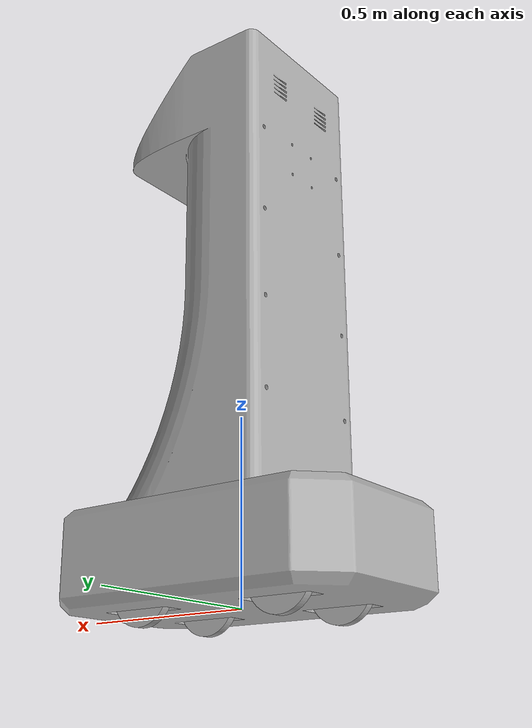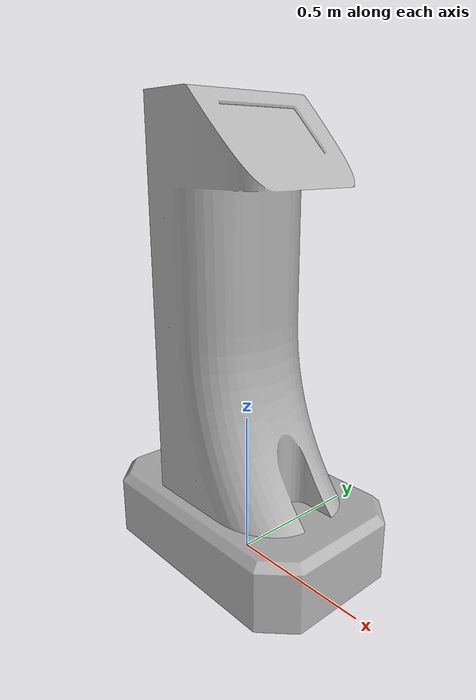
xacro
<?xml version="1.0" ?>
<robot name="urdF" xmlns:xacro="http://www.ros.org/wiki/xacro">

<xacro:include filename="$(find urdF_description)/urdf/materials.xacro" />
<xacro:include filename="$(find urdF_description)/urdf/urdF.trans" />
<xacro:include filename="$(find urdF_description)/urdf/urdF.gazebo" />
<link name="base_link">
  <inertial>
    <origin xyz="7.980285628189428e-17 -3.990142814094714e-17 0.12803630068802982" rpy="0 0 0"/>
    <mass value="916.117862361551"/>
    <inertia ixx="29.080883" iyy="62.895145" izz="82.576037" ixy="-0.0" iyz="0.0" ixz="0.0"/>
  </inertial>
  <visual>
    <origin xyz="0 0 0" rpy="0 0 0"/>
    <geometry>
      <mesh filename="package://urdF_description/meshes/base_link.stl" scale="0.001 0.001 0.001"/>
    </geometry>
    <material name="silver"/>
  </visual>
  <collision>
    <origin xyz="0 0 0" rpy="0 0 0"/>
    <geometry>
      <mesh filename="package://urdF_description/meshes/base_link.stl" scale="0.001 0.001 0.001"/>
    </geometry>
  </collision>
</link>

<link name="L_WHEEL_F_1">
  <inertial>
    <origin xyz="1.27675647831893e-14 0.0 4.85722573273506e-17" rpy="0 0 0"/>
    <mass value="5.05336007222817"/>
    <inertia ixx="0.010871" iyy="0.021215" izz="0.010871" ixy="0.0" iyz="0.0" ixz="0.0"/>
  </inertial>
  <visual>
    <origin xyz="-0.2125 -0.1325 -0.05" rpy="0 0 0"/>
    <geometry>
      <mesh filename="package://urdF_description/meshes/L_WHEEL_F_1.stl" scale="0.001 0.001 0.001"/>
    </geometry>
    <material name="silver"/>
  </visual>
  <collision>
    <origin xyz="-0.2125 -0.1325 -0.05" rpy="0 0 0"/>
    <geometry>
      <mesh filename="package://urdF_description/meshes/L_WHEEL_F_1.stl" scale="0.001 0.001 0.001"/>
    </geometry>
  </collision>
</link>

<link name="L_WHEEL_B_1">
  <inertial>
    <origin xyz="1.2878587085651816e-14 0.0 1.1102230246251565e-16" rpy="0 0 0"/>
    <mass value="5.05336007222817"/>
    <inertia ixx="0.010871" iyy="0.021215" izz="0.010871" ixy="-0.0" iyz="0.0" ixz="0.0"/>
  </inertial>
  <visual>
    <origin xyz="0.2125 -0.1325 -0.05" rpy="0 0 0"/>
    <geometry>
      <mesh filename="package://urdF_description/meshes/L_WHEEL_B_1.stl" scale="0.001 0.001 0.001"/>
    </geometry>
    <material name="silver"/>
  </visual>
  <collision>
    <origin xyz="0.2125 -0.1325 -0.05" rpy="0 0 0"/>
    <geometry>
      <mesh filename="package://urdF_description/meshes/L_WHEEL_B_1.stl" scale="0.001 0.001 0.001"/>
    </geometry>
  </collision>
</link>

<link name="R_WHEEL_B_1">
  <inertial>
    <origin xyz="1.2823075934420558e-14 0.0 4.85722573273506e-17" rpy="0 0 0"/>
    <mass value="5.05336007222817"/>
    <inertia ixx="0.010871" iyy="0.021215" izz="0.010871" ixy="0.0" iyz="0.0" ixz="0.0"/>
  </inertial>
  <visual>
    <origin xyz="0.2125 0.1325 -0.05" rpy="0 0 0"/>
    <geometry>
      <mesh filename="package://urdF_description/meshes/R_WHEEL_B_1.stl" scale="0.001 0.001 0.001"/>
    </geometry>
    <material name="silver"/>
  </visual>
  <collision>
    <origin xyz="0.2125 0.1325 -0.05" rpy="0 0 0"/>
    <geometry>
      <mesh filename="package://urdF_description/meshes/R_WHEEL_B_1.stl" scale="0.001 0.001 0.001"/>
    </geometry>
  </collision>
</link>

<link name="R_WHEEL_F_1">
  <inertial>
    <origin xyz="0.0 0.0 1.2760625889285393e-14" rpy="0 0 0"/>
    <mass value="5.05336007222817"/>
    <inertia ixx="0.010871" iyy="0.021215" izz="0.010871" ixy="0.0" iyz="0.0" ixz="0.0"/>
  </inertial>
  <visual>
    <origin xyz="-0.2125 0.1325 -0.05" rpy="0 0 0"/>
    <geometry>
      <mesh filename="package://urdF_description/meshes/R_WHEEL_F_1.stl" scale="0.001 0.001 0.001"/>
    </geometry>
    <material name="silver"/>
  </visual>
  <collision>
    <origin xyz="-0.2125 0.1325 -0.05" rpy="0 0 0"/>
    <geometry>
      <mesh filename="package://urdF_description/meshes/R_WHEEL_F_1.stl" scale="0.001 0.001 0.001"/>
    </geometry>
  </collision>
</link>

<link name="Top_Body_1">
  <inertial>
    <origin xyz="-0.04261578492205568 -1.7700002588756798e-05 0.6563727706924719" rpy="0 0 0"/>
    <mass value="363.27166737535043"/>
    <inertia ixx="64.249865" iyy="62.201154" izz="16.245371" ixy="0.001518" iyz="0.002613" ixz="1.62817"/>
  </inertial>
  <visual>
    <origin xyz="-0.0 0.0 -0.25" rpy="0 0 0"/>
    <geometry>
      <mesh filename="package://urdF_description/meshes/Top_Body_1.stl" scale="0.001 0.001 0.001"/>
    </geometry>
    <material name="silver"/>
  </visual>
  <collision>
    <origin xyz="-0.0 0.0 -0.25" rpy="0 0 0"/>
    <geometry>
      <mesh filename="package://urdF_description/meshes/Top_Body_1.stl" scale="0.001 0.001 0.001"/>
    </geometry>
  </collision>
</link>

<joint name="Revolute 1" type="continuous">
  <origin xyz="0.2125 0.1325 0.05" rpy="0 0 0"/>
  <parent link="base_link"/>
  <child link="L_WHEEL_F_1"/>
  <axis xyz="0.0 1.0 0.0"/>
</joint>

<joint name="Revolute 2" type="continuous">
  <origin xyz="-0.2125 0.1325 0.05" rpy="0 0 0"/>
  <parent link="base_link"/>
  <child link="L_WHEEL_B_1"/>
  <axis xyz="0.0 1.0 0.0"/>
</joint>

<joint name="Revolute 3" type="continuous">
  <origin xyz="-0.2125 -0.1325 0.05" rpy="0 0 0"/>
  <parent link="base_link"/>
  <child link="R_WHEEL_B_1"/>
  <axis xyz="0.0 1.0 0.0"/>
</joint>

<joint name="Revolute 4" type="continuous">
  <origin xyz="0.2125 -0.1325 0.05" rpy="0 0 0"/>
  <parent link="base_link"/>
  <child link="R_WHEEL_F_1"/>
  <axis xyz="0.0 1.0 0.0"/>
</joint>

<joint name="Rigid 6" type="fixed">
  <origin xyz="0.0 0.0 0.25" rpy="0 0 0"/>
  <parent link="base_link"/>
  <child link="Top_Body_1"/>
</joint>

</robot>

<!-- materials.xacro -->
<robot name="urdF" xmlns:xacro="http://www.ros.org/wiki/xacro" >

<material name="silver">
  <color rgba="0.700 0.700 0.700 1.000"/>
</material>

</robot>

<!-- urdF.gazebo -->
<robot name="urdF" xmlns:xacro="http://www.ros.org/wiki/xacro" >

<xacro:property name="body_color" value="Gazebo/Silver" />

<gazebo>
  <plugin name="control" filename="libgazebo_ros_control.so"/>
</gazebo>
<gazebo reference="base_link">
  <material>${body_color}</material>
  <mu1>0.2</mu1>
  <mu2>0.2</mu2>
  <selfCollide>true</selfCollide>
  <gravity>true</gravity>
</gazebo>

<gazebo reference="L_WHEEL_F_1">
  <material>${body_color}</material>
  <mu1>0.2</mu1>
  <mu2>0.2</mu2>
  <selfCollide>true</selfCollide>
</gazebo>

<gazebo reference="L_WHEEL_B_1">
  <material>${body_color}</material>
  <mu1>0.2</mu1>
  <mu2>0.2</mu2>
  <selfCollide>true</selfCollide>
</gazebo>

<gazebo reference="R_WHEEL_B_1">
  <material>${body_color}</material>
  <mu1>0.2</mu1>
  <mu2>0.2</mu2>
  <selfCollide>true</selfCollide>
</gazebo>

<gazebo reference="R_WHEEL_F_1">
  <material>${body_color}</material>
  <mu1>0.2</mu1>
  <mu2>0.2</mu2>
  <selfCollide>true</selfCollide>
</gazebo>

<gazebo reference="Top_Body_1">
  <material>${body_color}</material>
  <mu1>0.2</mu1>
  <mu2>0.2</mu2>
  <selfCollide>true</selfCollide>
</gazebo>

</robot>
